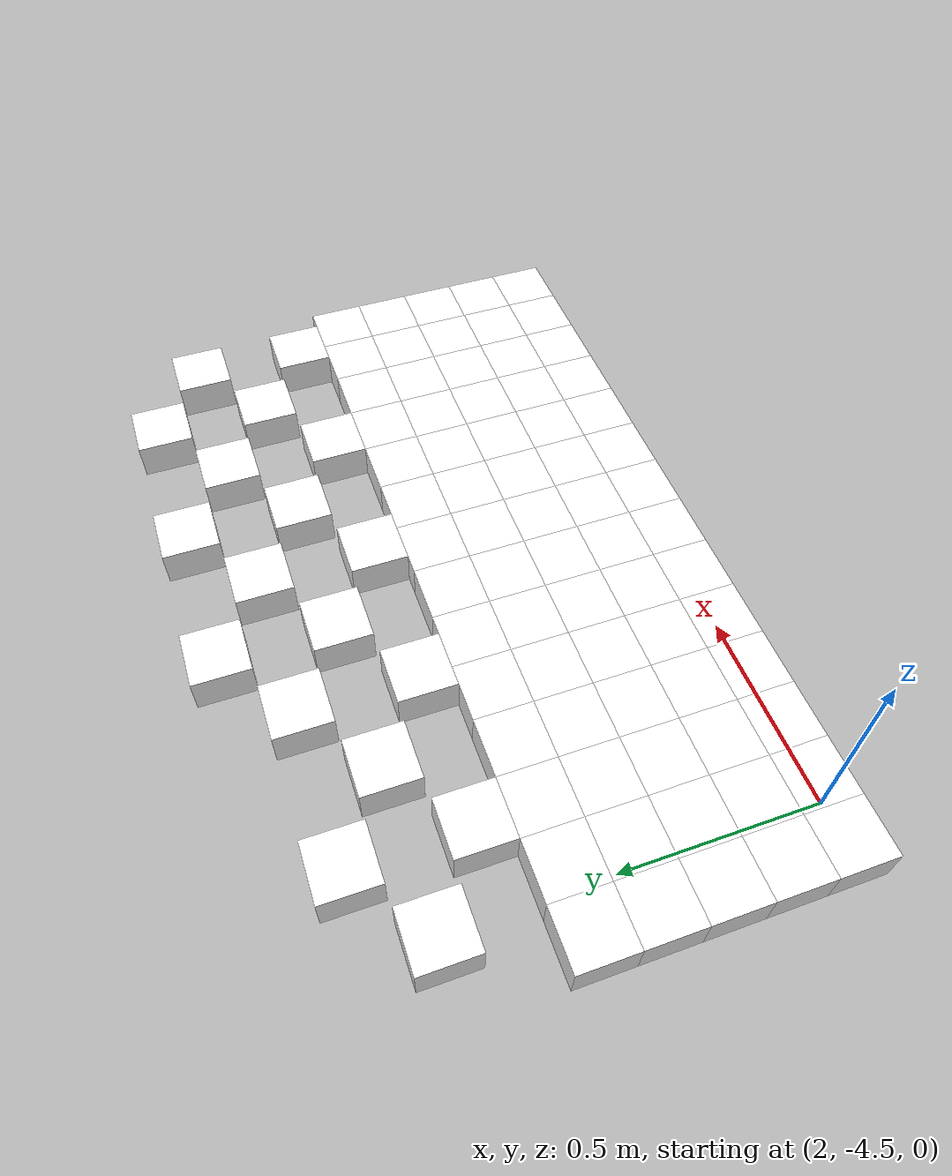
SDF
<sdf version="1.7">
 <world name="default">
  <include><uri>model://sun</uri></include>
  <model name="static_environment">
   <static>true</static>
   <link name="region_904">
    <pose>1.9996262665497788 -3.6003559049115217 0.0 0.0 0.0 4.7123</pose>
    <collision name="region_904_collision">
     <geometry><box><size>0.15 0.15 0.1</size></box></geometry>
     <surface><friction><ode><mu>1.0</mu><mu2>1.0</mu2></ode></friction></surface>
    </collision>
    <visual name="region_904_visual">
     <geometry><box><size>0.15 0.15 0.1</size></box></geometry>
     <material><ambient>1.0 1.0 1.0 1.0</ambient><diffuse>1.0 1.0 1.0 1.0</diffuse></material>
    </visual>
   </link>
   <link name="region_908">
    <pose>2.199639612815714 -3.4503737015822487 0.0 0.0 0.0 4.7123</pose>
    <collision name="region_908_collision">
     <geometry><box><size>0.15 0.15 0.1</size></box></geometry>
     <surface><friction><ode><mu>1.0</mu><mu2>1.0</mu2></ode></friction></surface>
    </collision>
    <visual name="region_908_visual">
     <geometry><box><size>0.15 0.15 0.1</size></box></geometry>
     <material><ambient>1.0 1.0 1.0 1.0</ambient><diffuse>1.0 1.0 1.0 1.0</diffuse></material>
    </visual>
   </link>
   <link name="region_909">
    <pose>2.1996129187003426 -3.7503737003946234 0.0 0.0 0.0 4.7123</pose>
    <collision name="region_909_collision">
     <geometry><box><size>0.15 0.15 0.1</size></box></geometry>
     <surface><friction><ode><mu>1.0</mu><mu2>1.0</mu2></ode></friction></surface>
    </collision>
    <visual name="region_909_visual">
     <geometry><box><size>0.15 0.15 0.1</size></box></geometry>
     <material><ambient>1.0 1.0 1.0 1.0</ambient><diffuse>1.0 1.0 1.0 1.0</diffuse></material>
    </visual>
   </link>
   <link name="region_914">
    <pose>2.399626264966277 -3.6003914970653503 0.0 0.0 0.0 4.7123</pose>
    <collision name="region_914_collision">
     <geometry><box><size>0.15 0.15 0.1</size></box></geometry>
     <surface><friction><ode><mu>1.0</mu><mu2>1.0</mu2></ode></friction></surface>
    </collision>
    <visual name="region_914_visual">
     <geometry><box><size>0.15 0.15 0.1</size></box></geometry>
     <material><ambient>1.0 1.0 1.0 1.0</ambient><diffuse>1.0 1.0 1.0 1.0</diffuse></material>
    </visual>
   </link>
   <link name="region_918">
    <pose>2.599639611232212 -3.450409293736078 0.0 0.0 0.0 4.7123</pose>
    <collision name="region_918_collision">
     <geometry><box><size>0.15 0.15 0.1</size></box></geometry>
     <surface><friction><ode><mu>1.0</mu><mu2>1.0</mu2></ode></friction></surface>
    </collision>
    <visual name="region_918_visual">
     <geometry><box><size>0.15 0.15 0.1</size></box></geometry>
     <material><ambient>1.0 1.0 1.0 1.0</ambient><diffuse>1.0 1.0 1.0 1.0</diffuse></material>
    </visual>
   </link>
   <link name="region_919">
    <pose>2.5996129171168407 -3.750409292548453 0.0 0.0 0.0 4.7123</pose>
    <collision name="region_919_collision">
     <geometry><box><size>0.15 0.15 0.1</size></box></geometry>
     <surface><friction><ode><mu>1.0</mu><mu2>1.0</mu2></ode></friction></surface>
    </collision>
    <visual name="region_919_visual">
     <geometry><box><size>0.15 0.15 0.1</size></box></geometry>
     <material><ambient>1.0 1.0 1.0 1.0</ambient><diffuse>1.0 1.0 1.0 1.0</diffuse></material>
    </visual>
   </link>
   <link name="region_923">
    <pose>2.7996529574981475 -3.300427090406805 0.0 0.0 0.0 4.7123</pose>
    <collision name="region_923_collision">
     <geometry><box><size>0.15 0.15 0.1</size></box></geometry>
     <surface><friction><ode><mu>1.0</mu><mu2>1.0</mu2></ode></friction></surface>
    </collision>
    <visual name="region_923_visual">
     <geometry><box><size>0.15 0.15 0.1</size></box></geometry>
     <material><ambient>1.0 1.0 1.0 1.0</ambient><diffuse>1.0 1.0 1.0 1.0</diffuse></material>
    </visual>
   </link>
   <link name="region_924">
    <pose>2.799626263382776 -3.60042708921918 0.0 0.0 0.0 4.7123</pose>
    <collision name="region_924_collision">
     <geometry><box><size>0.15 0.15 0.1</size></box></geometry>
     <surface><friction><ode><mu>1.0</mu><mu2>1.0</mu2></ode></friction></surface>
    </collision>
    <visual name="region_924_visual">
     <geometry><box><size>0.15 0.15 0.1</size></box></geometry>
     <material><ambient>1.0 1.0 1.0 1.0</ambient><diffuse>1.0 1.0 1.0 1.0</diffuse></material>
    </visual>
   </link>
   <link name="region_928">
    <pose>2.9996396096487112 -3.450444885889907 0.0 0.0 0.0 4.7123</pose>
    <collision name="region_928_collision">
     <geometry><box><size>0.15 0.15 0.1</size></box></geometry>
     <surface><friction><ode><mu>1.0</mu><mu2>1.0</mu2></ode></friction></surface>
    </collision>
    <visual name="region_928_visual">
     <geometry><box><size>0.15 0.15 0.1</size></box></geometry>
     <material><ambient>1.0 1.0 1.0 1.0</ambient><diffuse>1.0 1.0 1.0 1.0</diffuse></material>
    </visual>
   </link>
   <link name="region_929">
    <pose>2.9996129155333398 -3.7504448847022815 0.0 0.0 0.0 4.7123</pose>
    <collision name="region_929_collision">
     <geometry><box><size>0.15 0.15 0.1</size></box></geometry>
     <surface><friction><ode><mu>1.0</mu><mu2>1.0</mu2></ode></friction></surface>
    </collision>
    <visual name="region_929_visual">
     <geometry><box><size>0.15 0.15 0.1</size></box></geometry>
     <material><ambient>1.0 1.0 1.0 1.0</ambient><diffuse>1.0 1.0 1.0 1.0</diffuse></material>
    </visual>
   </link>
   <link name="region_933">
    <pose>3.1996529559146456 -3.300462682560634 0.0 0.0 0.0 4.7123</pose>
    <collision name="region_933_collision">
     <geometry><box><size>0.15 0.15 0.1</size></box></geometry>
     <surface><friction><ode><mu>1.0</mu><mu2>1.0</mu2></ode></friction></surface>
    </collision>
    <visual name="region_933_visual">
     <geometry><box><size>0.15 0.15 0.1</size></box></geometry>
     <material><ambient>1.0 1.0 1.0 1.0</ambient><diffuse>1.0 1.0 1.0 1.0</diffuse></material>
    </visual>
   </link>
   <link name="region_934">
    <pose>3.199626261799274 -3.6004626813730085 0.0 0.0 0.0 4.7123</pose>
    <collision name="region_934_collision">
     <geometry><box><size>0.15 0.15 0.1</size></box></geometry>
     <surface><friction><ode><mu>1.0</mu><mu2>1.0</mu2></ode></friction></surface>
    </collision>
    <visual name="region_934_visual">
     <geometry><box><size>0.15 0.15 0.1</size></box></geometry>
     <material><ambient>1.0 1.0 1.0 1.0</ambient><diffuse>1.0 1.0 1.0 1.0</diffuse></material>
    </visual>
   </link>
   <link name="region_938">
    <pose>3.3996396080652094 -3.4504804780437355 0.0 0.0 0.0 4.7123</pose>
    <collision name="region_938_collision">
     <geometry><box><size>0.15 0.15 0.1</size></box></geometry>
     <surface><friction><ode><mu>1.0</mu><mu2>1.0</mu2></ode></friction></surface>
    </collision>
    <visual name="region_938_visual">
     <geometry><box><size>0.15 0.15 0.1</size></box></geometry>
     <material><ambient>1.0 1.0 1.0 1.0</ambient><diffuse>1.0 1.0 1.0 1.0</diffuse></material>
    </visual>
   </link>
   <link name="region_939">
    <pose>3.399612913949838 -3.75048047685611 0.0 0.0 0.0 4.7123</pose>
    <collision name="region_939_collision">
     <geometry><box><size>0.15 0.15 0.1</size></box></geometry>
     <surface><friction><ode><mu>1.0</mu><mu2>1.0</mu2></ode></friction></surface>
    </collision>
    <visual name="region_939_visual">
     <geometry><box><size>0.15 0.15 0.1</size></box></geometry>
     <material><ambient>1.0 1.0 1.0 1.0</ambient><diffuse>1.0 1.0 1.0 1.0</diffuse></material>
    </visual>
   </link>
   <link name="region_943">
    <pose>3.5996529543311446 -3.300498274714463 0.0 0.0 0.0 4.7123</pose>
    <collision name="region_943_collision">
     <geometry><box><size>0.15 0.15 0.1</size></box></geometry>
     <surface><friction><ode><mu>1.0</mu><mu2>1.0</mu2></ode></friction></surface>
    </collision>
    <visual name="region_943_visual">
     <geometry><box><size>0.15 0.15 0.1</size></box></geometry>
     <material><ambient>1.0 1.0 1.0 1.0</ambient><diffuse>1.0 1.0 1.0 1.0</diffuse></material>
    </visual>
   </link>
   <link name="region_944">
    <pose>3.599626260215773 -3.600498273526838 0.0 0.0 0.0 4.7123</pose>
    <collision name="region_944_collision">
     <geometry><box><size>0.15 0.15 0.1</size></box></geometry>
     <surface><friction><ode><mu>1.0</mu><mu2>1.0</mu2></ode></friction></surface>
    </collision>
    <visual name="region_944_visual">
     <geometry><box><size>0.15 0.15 0.1</size></box></geometry>
     <material><ambient>1.0 1.0 1.0 1.0</ambient><diffuse>1.0 1.0 1.0 1.0</diffuse></material>
    </visual>
   </link>
   <link name="region_948">
    <pose>3.7996396064817084 -3.450516070197565 0.0 0.0 0.0 4.7123</pose>
    <collision name="region_948_collision">
     <geometry><box><size>0.15 0.15 0.1</size></box></geometry>
     <surface><friction><ode><mu>1.0</mu><mu2>1.0</mu2></ode></friction></surface>
    </collision>
    <visual name="region_948_visual">
     <geometry><box><size>0.15 0.15 0.1</size></box></geometry>
     <material><ambient>1.0 1.0 1.0 1.0</ambient><diffuse>1.0 1.0 1.0 1.0</diffuse></material>
    </visual>
   </link>
   <link name="region_949">
    <pose>3.799612912366337 -3.7505160690099397 0.0 0.0 0.0 4.7123</pose>
    <collision name="region_949_collision">
     <geometry><box><size>0.15 0.15 0.1</size></box></geometry>
     <surface><friction><ode><mu>1.0</mu><mu2>1.0</mu2></ode></friction></surface>
    </collision>
    <visual name="region_949_visual">
     <geometry><box><size>0.15 0.15 0.1</size></box></geometry>
     <material><ambient>1.0 1.0 1.0 1.0</ambient><diffuse>1.0 1.0 1.0 1.0</diffuse></material>
    </visual>
   </link>
   <link name="region_1080">
    <pose>1.89959957283028 -3.9003470056854375 0.0 0.0 0.0 4.7123</pose>
    <collision name="region_1080_collision">
     <geometry><box><size>0.15 0.15 0.1</size></box></geometry>
     <surface><friction><ode><mu>1.0</mu><mu2>1.0</mu2></ode></friction></surface>
    </collision>
    <visual name="region_1080_visual">
     <geometry><box><size>0.15 0.15 0.1</size></box></geometry>
     <material><ambient>1.0 1.0 1.0 1.0</ambient><diffuse>1.0 1.0 1.0 1.0</diffuse></material>
    </visual>
   </link>
   <link name="region_1081">
    <pose>1.8995862257725942 -4.050347005091625 0.0 0.0 0.0 4.7123</pose>
    <collision name="region_1081_collision">
     <geometry><box><size>0.15 0.15 0.1</size></box></geometry>
     <surface><friction><ode><mu>1.0</mu><mu2>1.0</mu2></ode></friction></surface>
    </collision>
    <visual name="region_1081_visual">
     <geometry><box><size>0.15 0.15 0.1</size></box></geometry>
     <material><ambient>1.0 1.0 1.0 1.0</ambient><diffuse>1.0 1.0 1.0 1.0</diffuse></material>
    </visual>
   </link>
   <link name="region_1082">
    <pose>1.899572878714908 -4.200347004497813 0.0 0.0 0.0 4.7123</pose>
    <collision name="region_1082_collision">
     <geometry><box><size>0.15 0.15 0.1</size></box></geometry>
     <surface><friction><ode><mu>1.0</mu><mu2>1.0</mu2></ode></friction></surface>
    </collision>
    <visual name="region_1082_visual">
     <geometry><box><size>0.15 0.15 0.1</size></box></geometry>
     <material><ambient>1.0 1.0 1.0 1.0</ambient><diffuse>1.0 1.0 1.0 1.0</diffuse></material>
    </visual>
   </link>
   <link name="region_1083">
    <pose>1.8995595316572222 -4.350347003904 0.0 0.0 0.0 4.7123</pose>
    <collision name="region_1083_collision">
     <geometry><box><size>0.15 0.15 0.1</size></box></geometry>
     <surface><friction><ode><mu>1.0</mu><mu2>1.0</mu2></ode></friction></surface>
    </collision>
    <visual name="region_1083_visual">
     <geometry><box><size>0.15 0.15 0.1</size></box></geometry>
     <material><ambient>1.0 1.0 1.0 1.0</ambient><diffuse>1.0 1.0 1.0 1.0</diffuse></material>
    </visual>
   </link>
   <link name="region_1084">
    <pose>1.8995461845995365 -4.500347003310187 0.0 0.0 0.0 4.7123</pose>
    <collision name="region_1084_collision">
     <geometry><box><size>0.15 0.15 0.1</size></box></geometry>
     <surface><friction><ode><mu>1.0</mu><mu2>1.0</mu2></ode></friction></surface>
    </collision>
    <visual name="region_1084_visual">
     <geometry><box><size>0.15 0.15 0.1</size></box></geometry>
     <material><ambient>1.0 1.0 1.0 1.0</ambient><diffuse>1.0 1.0 1.0 1.0</diffuse></material>
    </visual>
   </link>
   <link name="region_1085">
    <pose>2.049599572236467 -3.900360352743123 0.0 0.0 0.0 4.7123</pose>
    <collision name="region_1085_collision">
     <geometry><box><size>0.15 0.15 0.1</size></box></geometry>
     <surface><friction><ode><mu>1.0</mu><mu2>1.0</mu2></ode></friction></surface>
    </collision>
    <visual name="region_1085_visual">
     <geometry><box><size>0.15 0.15 0.1</size></box></geometry>
     <material><ambient>1.0 1.0 1.0 1.0</ambient><diffuse>1.0 1.0 1.0 1.0</diffuse></material>
    </visual>
   </link>
   <link name="region_1086">
    <pose>2.049586225178781 -4.050360352149311 0.0 0.0 0.0 4.7123</pose>
    <collision name="region_1086_collision">
     <geometry><box><size>0.15 0.15 0.1</size></box></geometry>
     <surface><friction><ode><mu>1.0</mu><mu2>1.0</mu2></ode></friction></surface>
    </collision>
    <visual name="region_1086_visual">
     <geometry><box><size>0.15 0.15 0.1</size></box></geometry>
     <material><ambient>1.0 1.0 1.0 1.0</ambient><diffuse>1.0 1.0 1.0 1.0</diffuse></material>
    </visual>
   </link>
   <link name="region_1087">
    <pose>2.0495728781210953 -4.200360351555498 0.0 0.0 0.0 4.7123</pose>
    <collision name="region_1087_collision">
     <geometry><box><size>0.15 0.15 0.1</size></box></geometry>
     <surface><friction><ode><mu>1.0</mu><mu2>1.0</mu2></ode></friction></surface>
    </collision>
    <visual name="region_1087_visual">
     <geometry><box><size>0.15 0.15 0.1</size></box></geometry>
     <material><ambient>1.0 1.0 1.0 1.0</ambient><diffuse>1.0 1.0 1.0 1.0</diffuse></material>
    </visual>
   </link>
   <link name="region_1088">
    <pose>2.0495595310634096 -4.350360350961686 0.0 0.0 0.0 4.7123</pose>
    <collision name="region_1088_collision">
     <geometry><box><size>0.15 0.15 0.1</size></box></geometry>
     <surface><friction><ode><mu>1.0</mu><mu2>1.0</mu2></ode></friction></surface>
    </collision>
    <visual name="region_1088_visual">
     <geometry><box><size>0.15 0.15 0.1</size></box></geometry>
     <material><ambient>1.0 1.0 1.0 1.0</ambient><diffuse>1.0 1.0 1.0 1.0</diffuse></material>
    </visual>
   </link>
   <link name="region_1089">
    <pose>2.049546184005724 -4.500360350367873 0.0 0.0 0.0 4.7123</pose>
    <collision name="region_1089_collision">
     <geometry><box><size>0.15 0.15 0.1</size></box></geometry>
     <surface><friction><ode><mu>1.0</mu><mu2>1.0</mu2></ode></friction></surface>
    </collision>
    <visual name="region_1089_visual">
     <geometry><box><size>0.15 0.15 0.1</size></box></geometry>
     <material><ambient>1.0 1.0 1.0 1.0</ambient><diffuse>1.0 1.0 1.0 1.0</diffuse></material>
    </visual>
   </link>
   <link name="region_1090">
    <pose>2.199599571642654 -3.900373699800809 0.0 0.0 0.0 4.7123</pose>
    <collision name="region_1090_collision">
     <geometry><box><size>0.15 0.15 0.1</size></box></geometry>
     <surface><friction><ode><mu>1.0</mu><mu2>1.0</mu2></ode></friction></surface>
    </collision>
    <visual name="region_1090_visual">
     <geometry><box><size>0.15 0.15 0.1</size></box></geometry>
     <material><ambient>1.0 1.0 1.0 1.0</ambient><diffuse>1.0 1.0 1.0 1.0</diffuse></material>
    </visual>
   </link>
   <link name="region_1091">
    <pose>2.1995862245849684 -4.050373699206997 0.0 0.0 0.0 4.7123</pose>
    <collision name="region_1091_collision">
     <geometry><box><size>0.15 0.15 0.1</size></box></geometry>
     <surface><friction><ode><mu>1.0</mu><mu2>1.0</mu2></ode></friction></surface>
    </collision>
    <visual name="region_1091_visual">
     <geometry><box><size>0.15 0.15 0.1</size></box></geometry>
     <material><ambient>1.0 1.0 1.0 1.0</ambient><diffuse>1.0 1.0 1.0 1.0</diffuse></material>
    </visual>
   </link>
   <link name="region_1092">
    <pose>2.1995728775272827 -4.200373698613184 0.0 0.0 0.0 4.7123</pose>
    <collision name="region_1092_collision">
     <geometry><box><size>0.15 0.15 0.1</size></box></geometry>
     <surface><friction><ode><mu>1.0</mu><mu2>1.0</mu2></ode></friction></surface>
    </collision>
    <visual name="region_1092_visual">
     <geometry><box><size>0.15 0.15 0.1</size></box></geometry>
     <material><ambient>1.0 1.0 1.0 1.0</ambient><diffuse>1.0 1.0 1.0 1.0</diffuse></material>
    </visual>
   </link>
   <link name="region_1093">
    <pose>2.199559530469597 -4.3503736980193715 0.0 0.0 0.0 4.7123</pose>
    <collision name="region_1093_collision">
     <geometry><box><size>0.15 0.15 0.1</size></box></geometry>
     <surface><friction><ode><mu>1.0</mu><mu2>1.0</mu2></ode></friction></surface>
    </collision>
    <visual name="region_1093_visual">
     <geometry><box><size>0.15 0.15 0.1</size></box></geometry>
     <material><ambient>1.0 1.0 1.0 1.0</ambient><diffuse>1.0 1.0 1.0 1.0</diffuse></material>
    </visual>
   </link>
   <link name="region_1094">
    <pose>2.199546183411911 -4.500373697425559 0.0 0.0 0.0 4.7123</pose>
    <collision name="region_1094_collision">
     <geometry><box><size>0.15 0.15 0.1</size></box></geometry>
     <surface><friction><ode><mu>1.0</mu><mu2>1.0</mu2></ode></friction></surface>
    </collision>
    <visual name="region_1094_visual">
     <geometry><box><size>0.15 0.15 0.1</size></box></geometry>
     <material><ambient>1.0 1.0 1.0 1.0</ambient><diffuse>1.0 1.0 1.0 1.0</diffuse></material>
    </visual>
   </link>
   <link name="region_1095">
    <pose>2.3495995710488415 -3.9003870468584947 0.0 0.0 0.0 4.7123</pose>
    <collision name="region_1095_collision">
     <geometry><box><size>0.15 0.15 0.1</size></box></geometry>
     <surface><friction><ode><mu>1.0</mu><mu2>1.0</mu2></ode></friction></surface>
    </collision>
    <visual name="region_1095_visual">
     <geometry><box><size>0.15 0.15 0.1</size></box></geometry>
     <material><ambient>1.0 1.0 1.0 1.0</ambient><diffuse>1.0 1.0 1.0 1.0</diffuse></material>
    </visual>
   </link>
   <link name="region_1096">
    <pose>2.349586223991156 -4.0503870462646825 0.0 0.0 0.0 4.7123</pose>
    <collision name="region_1096_collision">
     <geometry><box><size>0.15 0.15 0.1</size></box></geometry>
     <surface><friction><ode><mu>1.0</mu><mu2>1.0</mu2></ode></friction></surface>
    </collision>
    <visual name="region_1096_visual">
     <geometry><box><size>0.15 0.15 0.1</size></box></geometry>
     <material><ambient>1.0 1.0 1.0 1.0</ambient><diffuse>1.0 1.0 1.0 1.0</diffuse></material>
    </visual>
   </link>
   <link name="region_1097">
    <pose>2.34957287693347 -4.20038704567087 0.0 0.0 0.0 4.7123</pose>
    <collision name="region_1097_collision">
     <geometry><box><size>0.15 0.15 0.1</size></box></geometry>
     <surface><friction><ode><mu>1.0</mu><mu2>1.0</mu2></ode></friction></surface>
    </collision>
    <visual name="region_1097_visual">
     <geometry><box><size>0.15 0.15 0.1</size></box></geometry>
     <material><ambient>1.0 1.0 1.0 1.0</ambient><diffuse>1.0 1.0 1.0 1.0</diffuse></material>
    </visual>
   </link>
   <link name="region_1098">
    <pose>2.3495595298757843 -4.350387045077057 0.0 0.0 0.0 4.7123</pose>
    <collision name="region_1098_collision">
     <geometry><box><size>0.15 0.15 0.1</size></box></geometry>
     <surface><friction><ode><mu>1.0</mu><mu2>1.0</mu2></ode></friction></surface>
    </collision>
    <visual name="region_1098_visual">
     <geometry><box><size>0.15 0.15 0.1</size></box></geometry>
     <material><ambient>1.0 1.0 1.0 1.0</ambient><diffuse>1.0 1.0 1.0 1.0</diffuse></material>
    </visual>
   </link>
   <link name="region_1099">
    <pose>2.3495461828180986 -4.500387044483245 0.0 0.0 0.0 4.7123</pose>
    <collision name="region_1099_collision">
     <geometry><box><size>0.15 0.15 0.1</size></box></geometry>
     <surface><friction><ode><mu>1.0</mu><mu2>1.0</mu2></ode></friction></surface>
    </collision>
    <visual name="region_1099_visual">
     <geometry><box><size>0.15 0.15 0.1</size></box></geometry>
     <material><ambient>1.0 1.0 1.0 1.0</ambient><diffuse>1.0 1.0 1.0 1.0</diffuse></material>
    </visual>
   </link>
   <link name="region_1100">
    <pose>2.499599570455028 -3.9004003939161813 0.0 0.0 0.0 4.7123</pose>
    <collision name="region_1100_collision">
     <geometry><box><size>0.15 0.15 0.1</size></box></geometry>
     <surface><friction><ode><mu>1.0</mu><mu2>1.0</mu2></ode></friction></surface>
    </collision>
    <visual name="region_1100_visual">
     <geometry><box><size>0.15 0.15 0.1</size></box></geometry>
     <material><ambient>1.0 1.0 1.0 1.0</ambient><diffuse>1.0 1.0 1.0 1.0</diffuse></material>
    </visual>
   </link>
   <link name="region_1101">
    <pose>2.4995862233973423 -4.050400393322369 0.0 0.0 0.0 4.7123</pose>
    <collision name="region_1101_collision">
     <geometry><box><size>0.15 0.15 0.1</size></box></geometry>
     <surface><friction><ode><mu>1.0</mu><mu2>1.0</mu2></ode></friction></surface>
    </collision>
    <visual name="region_1101_visual">
     <geometry><box><size>0.15 0.15 0.1</size></box></geometry>
     <material><ambient>1.0 1.0 1.0 1.0</ambient><diffuse>1.0 1.0 1.0 1.0</diffuse></material>
    </visual>
   </link>
   <link name="region_1102">
    <pose>2.4995728763396565 -4.2004003927285565 0.0 0.0 0.0 4.7123</pose>
    <collision name="region_1102_collision">
     <geometry><box><size>0.15 0.15 0.1</size></box></geometry>
     <surface><friction><ode><mu>1.0</mu><mu2>1.0</mu2></ode></friction></surface>
    </collision>
    <visual name="region_1102_visual">
     <geometry><box><size>0.15 0.15 0.1</size></box></geometry>
     <material><ambient>1.0 1.0 1.0 1.0</ambient><diffuse>1.0 1.0 1.0 1.0</diffuse></material>
    </visual>
   </link>
   <link name="region_1103">
    <pose>2.499559529281971 -4.350400392134744 0.0 0.0 0.0 4.7123</pose>
    <collision name="region_1103_collision">
     <geometry><box><size>0.15 0.15 0.1</size></box></geometry>
     <surface><friction><ode><mu>1.0</mu><mu2>1.0</mu2></ode></friction></surface>
    </collision>
    <visual name="region_1103_visual">
     <geometry><box><size>0.15 0.15 0.1</size></box></geometry>
     <material><ambient>1.0 1.0 1.0 1.0</ambient><diffuse>1.0 1.0 1.0 1.0</diffuse></material>
    </visual>
   </link>
   <link name="region_1104">
    <pose>2.499546182224285 -4.500400391540931 0.0 0.0 0.0 4.7123</pose>
    <collision name="region_1104_collision">
     <geometry><box><size>0.15 0.15 0.1</size></box></geometry>
     <surface><friction><ode><mu>1.0</mu><mu2>1.0</mu2></ode></friction></surface>
    </collision>
    <visual name="region_1104_visual">
     <geometry><box><size>0.15 0.15 0.1</size></box></geometry>
     <material><ambient>1.0 1.0 1.0 1.0</ambient><diffuse>1.0 1.0 1.0 1.0</diffuse></material>
    </visual>
   </link>
   <link name="region_1105">
    <pose>2.6495995698612154 -3.900413740973867 0.0 0.0 0.0 4.7123</pose>
    <collision name="region_1105_collision">
     <geometry><box><size>0.15 0.15 0.1</size></box></geometry>
     <surface><friction><ode><mu>1.0</mu><mu2>1.0</mu2></ode></friction></surface>
    </collision>
    <visual name="region_1105_visual">
     <geometry><box><size>0.15 0.15 0.1</size></box></geometry>
     <material><ambient>1.0 1.0 1.0 1.0</ambient><diffuse>1.0 1.0 1.0 1.0</diffuse></material>
    </visual>
   </link>
   <link name="region_1106">
    <pose>2.6495862228035296 -4.050413740380055 0.0 0.0 0.0 4.7123</pose>
    <collision name="region_1106_collision">
     <geometry><box><size>0.15 0.15 0.1</size></box></geometry>
     <surface><friction><ode><mu>1.0</mu><mu2>1.0</mu2></ode></friction></surface>
    </collision>
    <visual name="region_1106_visual">
     <geometry><box><size>0.15 0.15 0.1</size></box></geometry>
     <material><ambient>1.0 1.0 1.0 1.0</ambient><diffuse>1.0 1.0 1.0 1.0</diffuse></material>
    </visual>
   </link>
   <link name="region_1107">
    <pose>2.649572875745844 -4.200413739786242 0.0 0.0 0.0 4.7123</pose>
    <collision name="region_1107_collision">
     <geometry><box><size>0.15 0.15 0.1</size></box></geometry>
     <surface><friction><ode><mu>1.0</mu><mu2>1.0</mu2></ode></friction></surface>
    </collision>
    <visual name="region_1107_visual">
     <geometry><box><size>0.15 0.15 0.1</size></box></geometry>
     <material><ambient>1.0 1.0 1.0 1.0</ambient><diffuse>1.0 1.0 1.0 1.0</diffuse></material>
    </visual>
   </link>
   <link name="region_1108">
    <pose>2.649559528688158 -4.35041373919243 0.0 0.0 0.0 4.7123</pose>
    <collision name="region_1108_collision">
     <geometry><box><size>0.15 0.15 0.1</size></box></geometry>
     <surface><friction><ode><mu>1.0</mu><mu2>1.0</mu2></ode></friction></surface>
    </collision>
    <visual name="region_1108_visual">
     <geometry><box><size>0.15 0.15 0.1</size></box></geometry>
     <material><ambient>1.0 1.0 1.0 1.0</ambient><diffuse>1.0 1.0 1.0 1.0</diffuse></material>
    </visual>
   </link>
   <link name="region_1109">
    <pose>2.6495461816304724 -4.500413738598617 0.0 0.0 0.0 4.7123</pose>
    <collision name="region_1109_collision">
     <geometry><box><size>0.15 0.15 0.1</size></box></geometry>
     <surface><friction><ode><mu>1.0</mu><mu2>1.0</mu2></ode></friction></surface>
    </collision>
    <visual name="region_1109_visual">
     <geometry><box><size>0.15 0.15 0.1</size></box></geometry>
     <material><ambient>1.0 1.0 1.0 1.0</ambient><diffuse>1.0 1.0 1.0 1.0</diffuse></material>
    </visual>
   </link>
   <link name="region_1110">
    <pose>2.7995995692674027 -3.900427088031553 0.0 0.0 0.0 4.7123</pose>
    <collision name="region_1110_collision">
     <geometry><box><size>0.15 0.15 0.1</size></box></geometry>
     <surface><friction><ode><mu>1.0</mu><mu2>1.0</mu2></ode></friction></surface>
    </collision>
    <visual name="region_1110_visual">
     <geometry><box><size>0.15 0.15 0.1</size></box></geometry>
     <material><ambient>1.0 1.0 1.0 1.0</ambient><diffuse>1.0 1.0 1.0 1.0</diffuse></material>
    </visual>
   </link>
   <link name="region_1111">
    <pose>2.799586222209717 -4.050427087437741 0.0 0.0 0.0 4.7123</pose>
    <collision name="region_1111_collision">
     <geometry><box><size>0.15 0.15 0.1</size></box></geometry>
     <surface><friction><ode><mu>1.0</mu><mu2>1.0</mu2></ode></friction></surface>
    </collision>
    <visual name="region_1111_visual">
     <geometry><box><size>0.15 0.15 0.1</size></box></geometry>
     <material><ambient>1.0 1.0 1.0 1.0</ambient><diffuse>1.0 1.0 1.0 1.0</diffuse></material>
    </visual>
   </link>
   <link name="region_1112">
    <pose>2.7995728751520312 -4.200427086843928 0.0 0.0 0.0 4.7123</pose>
    <collision name="region_1112_collision">
     <geometry><box><size>0.15 0.15 0.1</size></box></geometry>
     <surface><friction><ode><mu>1.0</mu><mu2>1.0</mu2></ode></friction></surface>
    </collision>
    <visual name="region_1112_visual">
     <geometry><box><size>0.15 0.15 0.1</size></box></geometry>
     <material><ambient>1.0 1.0 1.0 1.0</ambient><diffuse>1.0 1.0 1.0 1.0</diffuse></material>
    </visual>
   </link>
   <link name="region_1113">
    <pose>2.7995595280943455 -4.350427086250115 0.0 0.0 0.0 4.7123</pose>
    <collision name="region_1113_collision">
     <geometry><box><size>0.15 0.15 0.1</size></box></geometry>
     <surface><friction><ode><mu>1.0</mu><mu2>1.0</mu2></ode></friction></surface>
    </collision>
    <visual name="region_1113_visual">
     <geometry><box><size>0.15 0.15 0.1</size></box></geometry>
     <material><ambient>1.0 1.0 1.0 1.0</ambient><diffuse>1.0 1.0 1.0 1.0</diffuse></material>
    </visual>
   </link>
   <link name="region_1114">
    <pose>2.7995461810366598 -4.500427085656303 0.0 0.0 0.0 4.7123</pose>
    <collision name="region_1114_collision">
     <geometry><box><size>0.15 0.15 0.1</size></box></geometry>
     <surface><friction><ode><mu>1.0</mu><mu2>1.0</mu2></ode></friction></surface>
    </collision>
    <visual name="region_1114_visual">
     <geometry><box><size>0.15 0.15 0.1</size></box></geometry>
     <material><ambient>1.0 1.0 1.0 1.0</ambient><diffuse>1.0 1.0 1.0 1.0</diffuse></material>
    </visual>
   </link>
   <link name="region_1115">
    <pose>2.94959956867359 -3.9004404350892385 0.0 0.0 0.0 4.7123</pose>
    <collision name="region_1115_collision">
     <geometry><box><size>0.15 0.15 0.1</size></box></geometry>
     <surface><friction><ode><mu>1.0</mu><mu2>1.0</mu2></ode></friction></surface>
    </collision>
    <visual name="region_1115_visual">
     <geometry><box><size>0.15 0.15 0.1</size></box></geometry>
     <material><ambient>1.0 1.0 1.0 1.0</ambient><diffuse>1.0 1.0 1.0 1.0</diffuse></material>
    </visual>
   </link>
   <link name="region_1116">
    <pose>2.9495862216159043 -4.050440434495426 0.0 0.0 0.0 4.7123</pose>
    <collision name="region_1116_collision">
     <geometry><box><size>0.15 0.15 0.1</size></box></geometry>
     <surface><friction><ode><mu>1.0</mu><mu2>1.0</mu2></ode></friction></surface>
    </collision>
    <visual name="region_1116_visual">
     <geometry><box><size>0.15 0.15 0.1</size></box></geometry>
     <material><ambient>1.0 1.0 1.0 1.0</ambient><diffuse>1.0 1.0 1.0 1.0</diffuse></material>
    </visual>
   </link>
   <link name="region_1117">
    <pose>2.9495728745582186 -4.200440433901614 0.0 0.0 0.0 4.7123</pose>
    <collision name="region_1117_collision">
     <geometry><box><size>0.15 0.15 0.1</size></box></geometry>
     <surface><friction><ode><mu>1.0</mu><mu2>1.0</mu2></ode></friction></surface>
    </collision>
    <visual name="region_1117_visual">
     <geometry><box><size>0.15 0.15 0.1</size></box></geometry>
     <material><ambient>1.0 1.0 1.0 1.0</ambient><diffuse>1.0 1.0 1.0 1.0</diffuse></material>
    </visual>
   </link>
   <link name="region_1118">
    <pose>2.949559527500533 -4.350440433307801 0.0 0.0 0.0 4.7123</pose>
    <collision name="region_1118_collision">
     <geometry><box><size>0.15 0.15 0.1</size></box></geometry>
     <surface><friction><ode><mu>1.0</mu><mu2>1.0</mu2></ode></friction></surface>
    </collision>
    <visual name="region_1118_visual">
     <geometry><box><size>0.15 0.15 0.1</size></box></geometry>
     <material><ambient>1.0 1.0 1.0 1.0</ambient><diffuse>1.0 1.0 1.0 1.0</diffuse></material>
    </visual>
   </link>
   <link name="region_1119">
    <pose>2.949546180442847 -4.500440432713988 0.0 0.0 0.0 4.7123</pose>
    <collision name="region_1119_collision">
     <geometry><box><size>0.15 0.15 0.1</size></box></geometry>
     <surface><friction><ode><mu>1.0</mu><mu2>1.0</mu2></ode></friction></surface>
    </collision>
    <visual name="region_1119_visual">
     <geometry><box><size>0.15 0.15 0.1</size></box></geometry>
     <material><ambient>1.0 1.0 1.0 1.0</ambient><diffuse>1.0 1.0 1.0 1.0</diffuse></material>
    </visual>
   </link>
   <link name="region_1120">
    <pose>3.0995995680797774 -3.9004537821469243 0.0 0.0 0.0 4.7123</pose>
    <collision name="region_1120_collision">
     <geometry><box><size>0.15 0.15 0.1</size></box></geometry>
     <surface><friction><ode><mu>1.0</mu><mu2>1.0</mu2></ode></friction></surface>
    </collision>
    <visual name="region_1120_visual">
     <geometry><box><size>0.15 0.15 0.1</size></box></geometry>
     <material><ambient>1.0 1.0 1.0 1.0</ambient><diffuse>1.0 1.0 1.0 1.0</diffuse></material>
    </visual>
   </link>
   <link name="region_1121">
    <pose>3.0995862210220917 -4.050453781553112 0.0 0.0 0.0 4.7123</pose>
    <collision name="region_1121_collision">
     <geometry><box><size>0.15 0.15 0.1</size></box></geometry>
     <surface><friction><ode><mu>1.0</mu><mu2>1.0</mu2></ode></friction></surface>
    </collision>
    <visual name="region_1121_visual">
     <geometry><box><size>0.15 0.15 0.1</size></box></geometry>
     <material><ambient>1.0 1.0 1.0 1.0</ambient><diffuse>1.0 1.0 1.0 1.0</diffuse></material>
    </visual>
   </link>
   <link name="region_1122">
    <pose>3.099572873964406 -4.200453780959299 0.0 0.0 0.0 4.7123</pose>
    <collision name="region_1122_collision">
     <geometry><box><size>0.15 0.15 0.1</size></box></geometry>
     <surface><friction><ode><mu>1.0</mu><mu2>1.0</mu2></ode></friction></surface>
    </collision>
    <visual name="region_1122_visual">
     <geometry><box><size>0.15 0.15 0.1</size></box></geometry>
     <material><ambient>1.0 1.0 1.0 1.0</ambient><diffuse>1.0 1.0 1.0 1.0</diffuse></material>
    </visual>
   </link>
   <link name="region_1123">
    <pose>3.09955952690672 -4.350453780365487 0.0 0.0 0.0 4.7123</pose>
    <collision name="region_1123_collision">
     <geometry><box><size>0.15 0.15 0.1</size></box></geometry>
     <surface><friction><ode><mu>1.0</mu><mu2>1.0</mu2></ode></friction></surface>
    </collision>
    <visual name="region_1123_visual">
     <geometry><box><size>0.15 0.15 0.1</size></box></geometry>
     <material><ambient>1.0 1.0 1.0 1.0</ambient><diffuse>1.0 1.0 1.0 1.0</diffuse></material>
    </visual>
   </link>
   <link name="region_1124">
    <pose>3.0995461798490345 -4.500453779771674 0.0 0.0 0.0 4.7123</pose>
    <collision name="region_1124_collision">
     <geometry><box><size>0.15 0.15 0.1</size></box></geometry>
     <surface><friction><ode><mu>1.0</mu><mu2>1.0</mu2></ode></friction></surface>
    </collision>
    <visual name="region_1124_visual">
     <geometry><box><size>0.15 0.15 0.1</size></box></geometry>
     <material><ambient>1.0 1.0 1.0 1.0</ambient><diffuse>1.0 1.0 1.0 1.0</diffuse></material>
    </visual>
   </link>
   <link name="region_1125">
    <pose>3.249599567485964 -3.90046712920461 0.0 0.0 0.0 4.7123</pose>
    <collision name="region_1125_collision">
     <geometry><box><size>0.15 0.15 0.1</size></box></geometry>
     <surface><friction><ode><mu>1.0</mu><mu2>1.0</mu2></ode></friction></surface>
    </collision>
    <visual name="region_1125_visual">
     <geometry><box><size>0.15 0.15 0.1</size></box></geometry>
     <material><ambient>1.0 1.0 1.0 1.0</ambient><diffuse>1.0 1.0 1.0 1.0</diffuse></material>
    </visual>
   </link>
   <link name="region_1126">
    <pose>3.249586220428278 -4.050467128610798 0.0 0.0 0.0 4.7123</pose>
    <collision name="region_1126_collision">
     <geometry><box><size>0.15 0.15 0.1</size></box></geometry>
     <surface><friction><ode><mu>1.0</mu><mu2>1.0</mu2></ode></friction></surface>
    </collision>
    <visual name="region_1126_visual">
     <geometry><box><size>0.15 0.15 0.1</size></box></geometry>
     <material><ambient>1.0 1.0 1.0 1.0</ambient><diffuse>1.0 1.0 1.0 1.0</diffuse></material>
    </visual>
   </link>
   <link name="region_1127">
    <pose>3.2495728733705924 -4.200467128016985 0.0 0.0 0.0 4.7123</pose>
    <collision name="region_1127_collision">
     <geometry><box><size>0.15 0.15 0.1</size></box></geometry>
     <surface><friction><ode><mu>1.0</mu><mu2>1.0</mu2></ode></friction></surface>
    </collision>
    <visual name="region_1127_visual">
     <geometry><box><size>0.15 0.15 0.1</size></box></geometry>
     <material><ambient>1.0 1.0 1.0 1.0</ambient><diffuse>1.0 1.0 1.0 1.0</diffuse></material>
    </visual>
   </link>
   <link name="region_1128">
    <pose>3.2495595263129067 -4.3504671274231725 0.0 0.0 0.0 4.7123</pose>
    <collision name="region_1128_collision">
     <geometry><box><size>0.15 0.15 0.1</size></box></geometry>
     <surface><friction><ode><mu>1.0</mu><mu2>1.0</mu2></ode></friction></surface>
    </collision>
    <visual name="region_1128_visual">
     <geometry><box><size>0.15 0.15 0.1</size></box></geometry>
     <material><ambient>1.0 1.0 1.0 1.0</ambient><diffuse>1.0 1.0 1.0 1.0</diffuse></material>
    </visual>
   </link>
   <link name="region_1129">
    <pose>3.249546179255221 -4.50046712682936 0.0 0.0 0.0 4.7123</pose>
    <collision name="region_1129_collision">
     <geometry><box><size>0.15 0.15 0.1</size></box></geometry>
     <surface><friction><ode><mu>1.0</mu><mu2>1.0</mu2></ode></friction></surface>
    </collision>
    <visual name="region_1129_visual">
     <geometry><box><size>0.15 0.15 0.1</size></box></geometry>
     <material><ambient>1.0 1.0 1.0 1.0</ambient><diffuse>1.0 1.0 1.0 1.0</diffuse></material>
    </visual>
   </link>
   <link name="region_1130">
    <pose>3.3995995668921513 -3.9004804762622958 0.0 0.0 0.0 4.7123</pose>
    <collision name="region_1130_collision">
     <geometry><box><size>0.15 0.15 0.1</size></box></geometry>
     <surface><friction><ode><mu>1.0</mu><mu2>1.0</mu2></ode></friction></surface>
    </collision>
    <visual name="region_1130_visual">
     <geometry><box><size>0.15 0.15 0.1</size></box></geometry>
     <material><ambient>1.0 1.0 1.0 1.0</ambient><diffuse>1.0 1.0 1.0 1.0</diffuse></material>
    </visual>
   </link>
   <link name="region_1131">
    <pose>3.3995862198344655 -4.050480475668484 0.0 0.0 0.0 4.7123</pose>
    <collision name="region_1131_collision">
     <geometry><box><size>0.15 0.15 0.1</size></box></geometry>
     <surface><friction><ode><mu>1.0</mu><mu2>1.0</mu2></ode></friction></surface>
    </collision>
    <visual name="region_1131_visual">
     <geometry><box><size>0.15 0.15 0.1</size></box></geometry>
     <material><ambient>1.0 1.0 1.0 1.0</ambient><diffuse>1.0 1.0 1.0 1.0</diffuse></material>
    </visual>
   </link>
   <link name="region_1132">
    <pose>3.3995728727767798 -4.200480475074671 0.0 0.0 0.0 4.7123</pose>
    <collision name="region_1132_collision">
     <geometry><box><size>0.15 0.15 0.1</size></box></geometry>
     <surface><friction><ode><mu>1.0</mu><mu2>1.0</mu2></ode></friction></surface>
    </collision>
    <visual name="region_1132_visual">
     <geometry><box><size>0.15 0.15 0.1</size></box></geometry>
     <material><ambient>1.0 1.0 1.0 1.0</ambient><diffuse>1.0 1.0 1.0 1.0</diffuse></material>
    </visual>
   </link>
   <link name="region_1133">
    <pose>3.399559525719094 -4.350480474480858 0.0 0.0 0.0 4.7123</pose>
    <collision name="region_1133_collision">
     <geometry><box><size>0.15 0.15 0.1</size></box></geometry>
     <surface><friction><ode><mu>1.0</mu><mu2>1.0</mu2></ode></friction></surface>
    </collision>
    <visual name="region_1133_visual">
     <geometry><box><size>0.15 0.15 0.1</size></box></geometry>
     <material><ambient>1.0 1.0 1.0 1.0</ambient><diffuse>1.0 1.0 1.0 1.0</diffuse></material>
    </visual>
   </link>
   <link name="region_1134">
    <pose>3.3995461786614083 -4.500480473887046 0.0 0.0 0.0 4.7123</pose>
    <collision name="region_1134_collision">
     <geometry><box><size>0.15 0.15 0.1</size></box></geometry>
     <surface><friction><ode><mu>1.0</mu><mu2>1.0</mu2></ode></friction></surface>
    </collision>
    <visual name="region_1134_visual">
     <geometry><box><size>0.15 0.15 0.1</size></box></geometry>
     <material><ambient>1.0 1.0 1.0 1.0</ambient><diffuse>1.0 1.0 1.0 1.0</diffuse></material>
    </visual>
   </link>
   <link name="region_1135">
    <pose>3.5495995662983386 -3.9004938233199824 0.0 0.0 0.0 4.7123</pose>
    <collision name="region_1135_collision">
     <geometry><box><size>0.15 0.15 0.1</size></box></geometry>
     <surface><friction><ode><mu>1.0</mu><mu2>1.0</mu2></ode></friction></surface>
    </collision>
    <visual name="region_1135_visual">
     <geometry><box><size>0.15 0.15 0.1</size></box></geometry>
     <material><ambient>1.0 1.0 1.0 1.0</ambient><diffuse>1.0 1.0 1.0 1.0</diffuse></material>
    </visual>
   </link>
   <link name="region_1136">
    <pose>3.549586219240653 -4.05049382272617 0.0 0.0 0.0 4.7123</pose>
    <collision name="region_1136_collision">
     <geometry><box><size>0.15 0.15 0.1</size></box></geometry>
     <surface><friction><ode><mu>1.0</mu><mu2>1.0</mu2></ode></friction></surface>
    </collision>
    <visual name="region_1136_visual">
     <geometry><box><size>0.15 0.15 0.1</size></box></geometry>
     <material><ambient>1.0 1.0 1.0 1.0</ambient><diffuse>1.0 1.0 1.0 1.0</diffuse></material>
    </visual>
   </link>
   <link name="region_1137">
    <pose>3.549572872182967 -4.200493822132358 0.0 0.0 0.0 4.7123</pose>
    <collision name="region_1137_collision">
     <geometry><box><size>0.15 0.15 0.1</size></box></geometry>
     <surface><friction><ode><mu>1.0</mu><mu2>1.0</mu2></ode></friction></surface>
    </collision>
    <visual name="region_1137_visual">
     <geometry><box><size>0.15 0.15 0.1</size></box></geometry>
     <material><ambient>1.0 1.0 1.0 1.0</ambient><diffuse>1.0 1.0 1.0 1.0</diffuse></material>
    </visual>
   </link>
   <link name="region_1138">
    <pose>3.5495595251252814 -4.350493821538545 0.0 0.0 0.0 4.7123</pose>
    <collision name="region_1138_collision">
     <geometry><box><size>0.15 0.15 0.1</size></box></geometry>
     <surface><friction><ode><mu>1.0</mu><mu2>1.0</mu2></ode></friction></surface>
    </collision>
    <visual name="region_1138_visual">
     <geometry><box><size>0.15 0.15 0.1</size></box></geometry>
     <material><ambient>1.0 1.0 1.0 1.0</ambient><diffuse>1.0 1.0 1.0 1.0</diffuse></material>
    </visual>
   </link>
   <link name="region_1139">
    <pose>3.5495461780675956 -4.500493820944732 0.0 0.0 0.0 4.7123</pose>
    <collision name="region_1139_collision">
     <geometry><box><size>0.15 0.15 0.1</size></box></geometry>
     <surface><friction><ode><mu>1.0</mu><mu2>1.0</mu2></ode></friction></surface>
    </collision>
    <visual name="region_1139_visual">
     <geometry><box><size>0.15 0.15 0.1</size></box></geometry>
     <material><ambient>1.0 1.0 1.0 1.0</ambient><diffuse>1.0 1.0 1.0 1.0</diffuse></material>
    </visual>
   </link>
   <link name="region_1140">
    <pose>3.699599565704526 -3.900507170377668 0.0 0.0 0.0 4.7123</pose>
    <collision name="region_1140_collision">
     <geometry><box><size>0.15 0.15 0.1</size></box></geometry>
     <surface><friction><ode><mu>1.0</mu><mu2>1.0</mu2></ode></friction></surface>
    </collision>
    <visual name="region_1140_visual">
     <geometry><box><size>0.15 0.15 0.1</size></box></geometry>
     <material><ambient>1.0 1.0 1.0 1.0</ambient><diffuse>1.0 1.0 1.0 1.0</diffuse></material>
    </visual>
   </link>
   <link name="region_1141">
    <pose>3.6995862186468402 -4.050507169783856 0.0 0.0 0.0 4.7123</pose>
    <collision name="region_1141_collision">
     <geometry><box><size>0.15 0.15 0.1</size></box></geometry>
     <surface><friction><ode><mu>1.0</mu><mu2>1.0</mu2></ode></friction></surface>
    </collision>
    <visual name="region_1141_visual">
     <geometry><box><size>0.15 0.15 0.1</size></box></geometry>
     <material><ambient>1.0 1.0 1.0 1.0</ambient><diffuse>1.0 1.0 1.0 1.0</diffuse></material>
    </visual>
   </link>
   <link name="region_1142">
    <pose>3.6995728715891545 -4.200507169190043 0.0 0.0 0.0 4.7123</pose>
    <collision name="region_1142_collision">
     <geometry><box><size>0.15 0.15 0.1</size></box></geometry>
     <surface><friction><ode><mu>1.0</mu><mu2>1.0</mu2></ode></friction></surface>
    </collision>
    <visual name="region_1142_visual">
     <geometry><box><size>0.15 0.15 0.1</size></box></geometry>
     <material><ambient>1.0 1.0 1.0 1.0</ambient><diffuse>1.0 1.0 1.0 1.0</diffuse></material>
    </visual>
   </link>
   <link name="region_1143">
    <pose>3.6995595245314687 -4.350507168596231 0.0 0.0 0.0 4.7123</pose>
    <collision name="region_1143_collision">
     <geometry><box><size>0.15 0.15 0.1</size></box></geometry>
     <surface><friction><ode><mu>1.0</mu><mu2>1.0</mu2></ode></friction></surface>
    </collision>
    <visual name="region_1143_visual">
     <geometry><box><size>0.15 0.15 0.1</size></box></geometry>
     <material><ambient>1.0 1.0 1.0 1.0</ambient><diffuse>1.0 1.0 1.0 1.0</diffuse></material>
    </visual>
   </link>
   <link name="region_1144">
    <pose>3.699546177473783 -4.500507168002418 0.0 0.0 0.0 4.7123</pose>
    <collision name="region_1144_collision">
     <geometry><box><size>0.15 0.15 0.1</size></box></geometry>
     <surface><friction><ode><mu>1.0</mu><mu2>1.0</mu2></ode></friction></surface>
    </collision>
    <visual name="region_1144_visual">
     <geometry><box><size>0.15 0.15 0.1</size></box></geometry>
     <material><ambient>1.0 1.0 1.0 1.0</ambient><diffuse>1.0 1.0 1.0 1.0</diffuse></material>
    </visual>
   </link>
   <link name="region_1145">
    <pose>3.8495995651107133 -3.900520517435354 0.0 0.0 0.0 4.7123</pose>
    <collision name="region_1145_collision">
     <geometry><box><size>0.15 0.15 0.1</size></box></geometry>
     <surface><friction><ode><mu>1.0</mu><mu2>1.0</mu2></ode></friction></surface>
    </collision>
    <visual name="region_1145_visual">
     <geometry><box><size>0.15 0.15 0.1</size></box></geometry>
     <material><ambient>1.0 1.0 1.0 1.0</ambient><diffuse>1.0 1.0 1.0 1.0</diffuse></material>
    </visual>
   </link>
   <link name="region_1146">
    <pose>3.8495862180530276 -4.050520516841542 0.0 0.0 0.0 4.7123</pose>
    <collision name="region_1146_collision">
     <geometry><box><size>0.15 0.15 0.1</size></box></geometry>
     <surface><friction><ode><mu>1.0</mu><mu2>1.0</mu2></ode></friction></surface>
    </collision>
    <visual name="region_1146_visual">
     <geometry><box><size>0.15 0.15 0.1</size></box></geometry>
     <material><ambient>1.0 1.0 1.0 1.0</ambient><diffuse>1.0 1.0 1.0 1.0</diffuse></material>
    </visual>
   </link>
   <link name="region_1147">
    <pose>3.849572870995342 -4.200520516247729 0.0 0.0 0.0 4.7123</pose>
    <collision name="region_1147_collision">
     <geometry><box><size>0.15 0.15 0.1</size></box></geometry>
     <surface><friction><ode><mu>1.0</mu><mu2>1.0</mu2></ode></friction></surface>
    </collision>
    <visual name="region_1147_visual">
     <geometry><box><size>0.15 0.15 0.1</size></box></geometry>
     <material><ambient>1.0 1.0 1.0 1.0</ambient><diffuse>1.0 1.0 1.0 1.0</diffuse></material>
    </visual>
   </link>
   <link name="region_1148">
    <pose>3.849559523937656 -4.350520515653916 0.0 0.0 0.0 4.7123</pose>
    <collision name="region_1148_collision">
     <geometry><box><size>0.15 0.15 0.1</size></box></geometry>
     <surface><friction><ode><mu>1.0</mu><mu2>1.0</mu2></ode></friction></surface>
    </collision>
    <visual name="region_1148_visual">
     <geometry><box><size>0.15 0.15 0.1</size></box></geometry>
     <material><ambient>1.0 1.0 1.0 1.0</ambient><diffuse>1.0 1.0 1.0 1.0</diffuse></material>
    </visual>
   </link>
   <link name="region_1149">
    <pose>3.8495461768799704 -4.500520515060104 0.0 0.0 0.0 4.7123</pose>
    <collision name="region_1149_collision">
     <geometry><box><size>0.15 0.15 0.1</size></box></geometry>
     <surface><friction><ode><mu>1.0</mu><mu2>1.0</mu2></ode></friction></surface>
    </collision>
    <visual name="region_1149_visual">
     <geometry><box><size>0.15 0.15 0.1</size></box></geometry>
     <material><ambient>1.0 1.0 1.0 1.0</ambient><diffuse>1.0 1.0 1.0 1.0</diffuse></material>
    </visual>
   </link>
  </model>
 </world>
</sdf>
